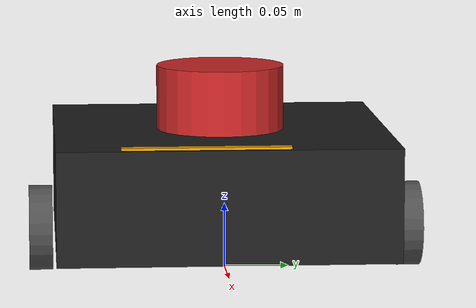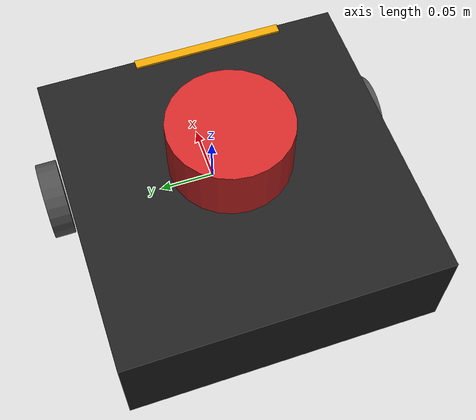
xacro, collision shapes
<?xml version="1.0"?>
<robot name="turtlebot3_waffle" xmlns:xacro="http://ros.org/wiki/xacro">

  <!-- Xacro properties -->
  <xacro:arg name="namespace" default="" />
  <xacro:property name="ns" value="$(arg namespace)" />

  <!-- Add namespace prefix if not empty -->
  <xacro:macro name="add_namespace" params="name">
    <xacro:if value="${ns != ''}">
      <xacro:property name="namespaced_name" value="${name}" />
    </xacro:if>
    <xacro:unless value="${ns != ''}">
      <xacro:property name="namespaced_name" value="${name}" />
    </xacro:unless>
    ${namespaced_name}
  </xacro:macro>

  <!-- Base footprint -->
  <link name="base_footprint"/>

  <!-- Base link -->
  <link name="base_link">
    <inertial>
      <origin xyz="-0.064 0 0.048" rpy="0 0 0"/>
      <mass value="1.8"/>
      <inertia ixx="0.008" ixy="0.000" ixz="0.000"
              iyy="0.011" iyz="0.000" izz="0.017"/>
  </inertial>

    <collision name="base_collision">
      <origin xyz="-0.064 0 0.048" rpy="0 0 0"/>
      <geometry>
        <box size="0.265 0.265 0.089"/>
      </geometry>
    </collision>

    <visual name="base_visual">
      <origin xyz="-0.064 0 0" rpy="0 0 0"/>
      <geometry>
        <mesh filename="package://turtlebot3_common/meshes/waffle_base.dae" scale="0.001 0.001 0.001"/>
      </geometry>
    </visual>
  </link>

  <!-- IMU link -->
  <link name="imu_link">
    <inertial>
      <mass value="0.001"/>
      <inertia ixx="0.001" ixy="0.000" ixz="0.000"
               iyy="0.001" iyz="0.000" izz="0.001"/>
    </inertial>
  </link>

  <!-- Lidar link -->
  <link name="scan">
    <inertial>
      <origin xyz="0 0 0" rpy="0 0 0"/>
      <mass value="0.125"/>
      <inertia ixx="0.001" ixy="0.000" ixz="0.000"
              iyy="0.001" iyz="0.000" izz="0.001"/>
    </inertial>

    <collision name="lidar_sensor_collision">
      <origin xyz="0.012 0 -0.005" rpy="0 0 0"/>
      <geometry>
        <cylinder radius="0.0508" length="0.055"/>
      </geometry>
    </collision>

    <visual name="lidar_sensor_visual">
      <origin xyz="0 0 0" rpy="0 0 0"/>
      <geometry>
        <mesh filename="package://turtlebot3_common/meshes/lds.dae" scale="0.001 0.001 0.001"/>
      </geometry>
    </visual>
  </link>

  <!-- Left wheel -->
  <link name="wheel_left_link">
    <inertial>
      <origin xyz="0 0 0" rpy="0 0 0"/>
      <mass value="0.1"/>
      <inertia ixx="0.00005" ixy="0.000" ixz="0.000"
              iyy="0.00005" iyz="0.000" izz="0.00009"/>
  </inertial>

    <collision name="wheel_left_collision">
      <origin xyz="0 0 0" rpy="0 0 0"/>
      <geometry>
        <cylinder radius="0.033" length="0.018"/>
      </geometry>
    </collision>

    <visual name="wheel_left_visual">
      <origin xyz="0 0 0" rpy="1.5707 0 0"/>
      <geometry>
        <mesh filename="package://turtlebot3_common/meshes/tire.dae" scale="0.001 0.001 0.001"/>
      </geometry>
    </visual>
  </link>

  <!-- Right wheel -->
  <link name="wheel_right_link">
    <inertial>
      <origin xyz="0 0 0" rpy="0 0 0"/>
      <mass value="0.1"/>
      <inertia ixx="0.00005" ixy="0.000" ixz="0.000"
              iyy="0.00005" iyz="0.000" izz="0.00009"/>
  </inertial>

    <collision name="wheel_right_collision">
      <origin xyz="0 0 0" rpy="0 0 0"/>
      <geometry>
        <cylinder radius="0.033" length="0.018"/>
      </geometry>
    </collision>

    <visual name="wheel_right_visual">
      <origin xyz="0 0 0" rpy="1.5707 0 0"/>
      <geometry>
        <mesh filename="package://turtlebot3_common/meshes/tire.dae" scale="0.001 0.001 0.001"/>
      </geometry>
    </visual>
  </link>

  <!-- Caster wheels -->
  <link name="caster_back_right_link">
    <inertial>
      <mass value="0.001"/>
      <inertia ixx="0.00001" ixy="0.000" ixz="0.000"
               iyy="0.00001" iyz="0.000" izz="0.00001"/>
    </inertial>
    <collision name="collision">
      <geometry>
        <sphere radius="0.005000"/>
      </geometry>
    </collision>
  </link>

  <link name="caster_back_left_link">
    <inertial>
      <mass value="0.001"/>
      <inertia ixx="0.00001" ixy="0.000" ixz="0.000"
               iyy="0.00001" iyz="0.000" izz="0.00001"/>
    </inertial>
    <collision name="collision">
      <geometry>
        <sphere radius="0.005000"/>
      </geometry>
    </collision>
  </link>

  <!-- Camera link -->
  <link name="camera_link">
    <inertial>
      <origin xyz="0.069 -0.047 0.107" rpy="0 0 0"/>
      <mass value="0.035"/>
      <inertia ixx="0.001" ixy="0.000" ixz="0.000"
               iyy="0.001" iyz="0.000" izz="0.001"/>
    </inertial>
    <collision name="collision">
      <origin xyz="0 0.047 0.000" rpy="0 0 0"/>
      <geometry>
        <box size="0.008 0.130 0.002"/>
      </geometry>
    </collision>
  </link>

  <!-- Joints -->
  <joint name="base_joint" type="fixed">
    <parent link="base_footprint"/>
    <child link="base_link"/>
    <origin xyz="0.0 0.0 0.010" rpy="0 0 0"/>
  </joint>

  <joint name="wheel_left_joint" type="continuous">
    <parent link="base_link"/>
    <child link="wheel_left_link"/>
    <origin xyz="0.0 0.144 0.023" rpy="-1.57 0 0"/>
    <axis xyz="0 0 1"/>
    <dynamics damping="0.1" friction="0.1"/>
  </joint>

  <joint name="wheel_right_joint" type="continuous">
    <parent link="base_link"/>
    <child link="wheel_right_link"/>
    <origin xyz="0.0 -0.144 0.023" rpy="-1.57 0 0"/>
    <axis xyz="0 0 1"/>
    <dynamics damping="0.1" friction="0.1"/>
  </joint>

  <joint name="caster_back_right_joint" type="fixed">
    <parent link="base_link"/>
    <child link="caster_back_right_link"/>
    <origin xyz="-0.177 -0.064 -0.005" rpy="0 0 0"/>
  </joint>

  <joint name="caster_back_left_joint" type="fixed">
    <parent link="base_link"/>
    <child link="caster_back_left_link"/>
    <origin xyz="-0.177 0.064 -0.005" rpy="0 0 0"/>
  </joint>

  <joint name="lidar_joint" type="fixed">
    <parent link="base_link"/>
    <child link="scan"/>
    <origin xyz="-0.064 0 0.121" rpy="0 0 0"/>
  </joint>

  <joint name="camera_joint" type="fixed">
    <parent link="base_link"/>
    <child link="camera_link"/>
    <origin xyz="0.064 -0.065 0.094" rpy="0 0 0"/>
  </joint>

  <joint name="imu_joint" type="fixed">
    <parent link="base_link"/>
    <child link="imu_link"/>
    <origin xyz="0 0 0.068" rpy="0 0 0"/>
  </joint>

  <gazebo reference="base_link">
    <mu1>0.2</mu1>
    <mu2>0.2</mu2>
    <material>Gazebo/FlatBlack</material>
  </gazebo>

  <gazebo reference="wheel_left_link">
    <mu1>1.0</mu1>
    <mu2>1.0</mu2>
    <fdir1>1 0 0</fdir1>
    <material>Gazebo/DarkGrey</material>
  </gazebo>

  <gazebo reference="wheel_right_link">
    <mu1>1.0</mu1>
    <mu2>1.0</mu2>
    <fdir1>1 0 0</fdir1>
    <material>Gazebo/DarkGrey</material>
  </gazebo>

  <!-- Ensure casters have low friction for smooth movement -->
  <gazebo reference="caster_back_right_link">
    <mu1>0.01</mu1>
    <mu2>0.01</mu2>
    <material>Gazebo/FlatBlack</material>
  </gazebo>

  <gazebo reference="caster_back_left_link">
    <mu1>0.01</mu1>
    <mu2>0.01</mu2>
    <material>Gazebo/FlatBlack</material>
  </gazebo>

  <gazebo reference="scan">
    <material>Gazebo/RedTransparent</material>
  </gazebo>

  <gazebo>
    <plugin name="turtlebot3_diff_drive" filename="libgazebo_ros_diff_drive.so">
      <update_rate>30</update_rate>

      <left_joint>wheel_left_joint</left_joint>
      <right_joint>wheel_right_joint</right_joint>

      <wheel_separation>0.287</wheel_separation>
      <wheel_diameter>0.066</wheel_diameter>

      <publish_odom_tf>true</publish_odom_tf>

      <odometry_frame>${ns}odom</odometry_frame>
      <robot_base_frame>${ns}base_footprint</robot_base_frame>

      <!-- Topic to publish odometry message on (will be namespaced automatically) -->
      <odometry_topic>${ns}odom</odometry_topic>
    </plugin>
  </gazebo>

  <gazebo>
    <plugin name="turtlebot3_joint_state" filename="libgazebo_ros_joint_state_publisher.so">
      <ros>
        <remapping>~/out:=joint_states</remapping>
      </ros>
      <update_rate>30</update_rate>
      <joint_name>wheel_left_joint</joint_name>
      <joint_name>wheel_right_joint</joint_name>
    </plugin>
  </gazebo>

  <!-- IMU sensor -->
  <gazebo reference="imu_link">
    <sensor name="tb3_imu" type="imu">
      <always_on>true</always_on>
      <update_rate>200</update_rate>
      <imu>
        <angular_velocity>
          <x>
            <noise type="gaussian">
              <mean>0.0</mean>
              <stddev>2e-4</stddev>
            </noise>
          </x>
          <y>
            <noise type="gaussian">
              <mean>0.0</mean>
              <stddev>2e-4</stddev>
            </noise>
          </y>
          <z>
            <noise type="gaussian">
              <mean>0.0</mean>
              <stddev>2e-4</stddev>
            </noise>
          </z>
        </angular_velocity>
        <linear_acceleration>
          <x>
            <noise type="gaussian">
              <mean>0.0</mean>
              <stddev>1.7e-2</stddev>
            </noise>
          </x>
          <y>
            <noise type="gaussian">
              <mean>0.0</mean>
              <stddev>1.7e-2</stddev>
            </noise>
          </y>
          <z>
            <noise type="gaussian">
              <mean>0.0</mean>
              <stddev>1.7e-2</stddev>
            </noise>
          </z>
        </linear_acceleration>
      </imu>
      <plugin name="turtlebot3_imu" filename="libgazebo_ros_imu_sensor.so">
        <initial_orientation_as_reference>false</initial_orientation_as_reference>
        <ros>
          <remapping>~/out:=imu</remapping>
        </ros>
      </plugin>
    </sensor>
  </gazebo>

  <!-- Lidar sensor -->
  <gazebo reference="scan">
    <sensor name="hls_lfcd_lds" type="ray">
      <always_on>true</always_on>
      <visualize>true</visualize>
      <pose>-0.064 0 0.15 0 0 0</pose>
      <update_rate>5</update_rate>
      <ray>
        <scan>
          <horizontal>
            <samples>360</samples>
            <resolution>1.000000</resolution>
            <min_angle>0.000000</min_angle>
            <max_angle>6.280000</max_angle>
          </horizontal>
        </scan>
        <range>
          <min>0.20000</min>
          <max>3.0</max>
          <resolution>0.015000</resolution>
        </range>
        <noise>
          <type>gaussian</type>
          <mean>0.0</mean>
          <stddev>0.01</stddev>
        </noise>
      </ray>
      <plugin name="turtlebot3_laserscan" filename="libgazebo_ros_ray_sensor.so">
        <ros>
          <remapping>~/out:=scan</remapping>
        </ros>
        <output_type>sensor_msgs/LaserScan</output_type>
        <frame_name>${ns}scan</frame_name>
      </plugin>
    </sensor>
  </gazebo>

  <!-- Camera sensor -->
  <gazebo reference="camera_link">
    <sensor name="intel_realsense_r200_depth" type="depth">
      <always_on>1</always_on>
      <update_rate>5</update_rate>
      <pose>0.064 -0.047 0.107 0 0 0</pose>
      <camera name="realsense_depth_camera">
        <horizontal_fov>1.047</horizontal_fov>
        <image>
          <width>640</width>
          <height>480</height>
          <format>R8G8B8</format>
        </image>
        <clip>
          <near>0.001</near>
          <far>5.0</far>
        </clip>
      </camera>
      <plugin name="intel_realsense_r200_depth_driver" filename="libgazebo_ros_camera.so">
        <camera_name>intel_realsense_r200_depth</camera_name>
        <frame_name>${ns}camera_depth_frame</frame_name>
        <hack_baseline>0.07</hack_baseline>
        <min_depth>0.001</min_depth>
        <max_depth>5.0</max_depth>
      </plugin>
    </sensor>
  </gazebo>

</robot>
